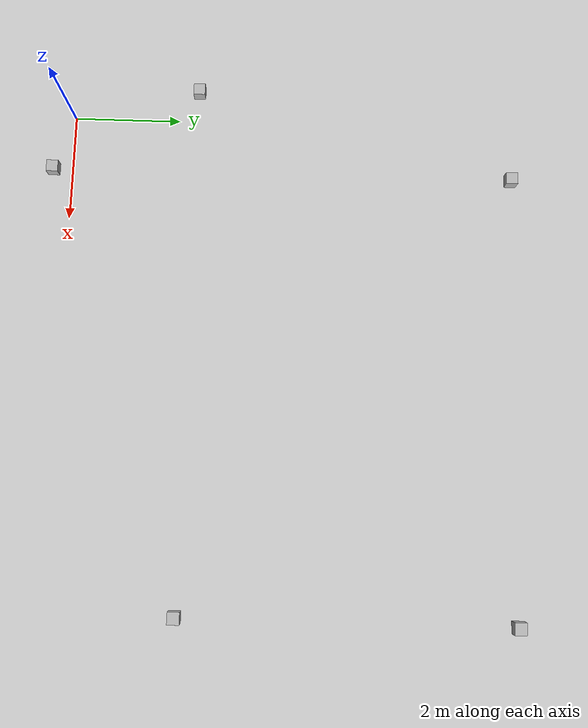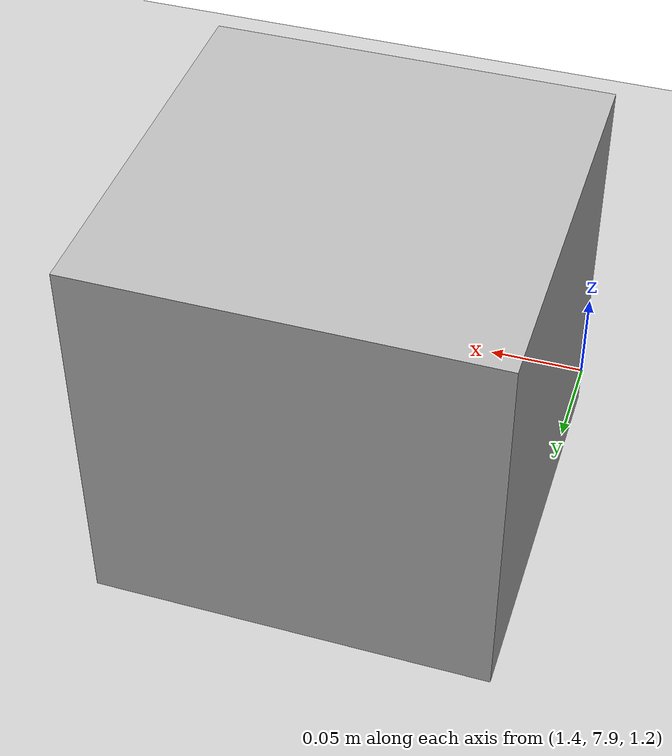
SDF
<sdf version="1.4">
 <world name="default">
  <include><uri>model://asphalt_plane</uri></include>
  <include><uri>model://sun</uri></include>
  <model name="uwb_anchor0">
   <pose>9 2.5 1.280 0 0 0</pose>
   <static>1</static>
   <link name="link">
    <visual name="visual"><geometry><box><size>0.2 0.2 0.2</size></box></geometry></visual>
   </link>
  </model>
  <model name="uwb_anchor1">
   <pose>9 8 1.280 0 0 0</pose>
   <static>1</static>
   <link name="link">
    <visual name="visual"><geometry><box><size>0.2 0.2 0.2</size></box></geometry></visual>
   </link>
  </model>
  <model name="uwb_anchor2">
   <pose>1.5 8 1.280 0 0 0</pose>
   <static>1</static>
   <link name="link">
    <visual name="visual"><geometry><box><size>0.2 0.2 0.2</size></box></geometry></visual>
   </link>
  </model>
  <model name="uwb_anchor3">
   <pose>0 2.5 1.280 0 0 0</pose>
   <static>1</static>
   <link name="link">
    <visual name="visual"><geometry><box><size>0.2 0.2 0.2</size></box></geometry></visual>
   </link>
  </model>
  <model name="uwb_anchor4">
   <pose>1.5 0 1.280 0 0 0</pose>
   <static>1</static>
   <link name="link">
    <visual name="visual"><geometry><box><size>0.2 0.2 0.2</size></box></geometry></visual>
   </link>
  </model>
 </world>
</sdf>
